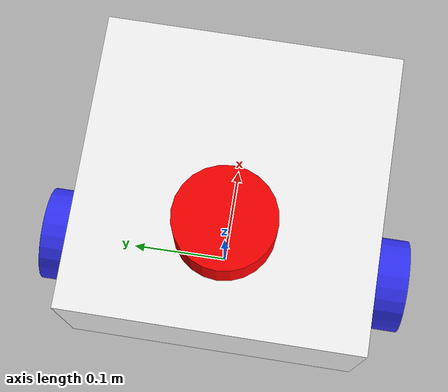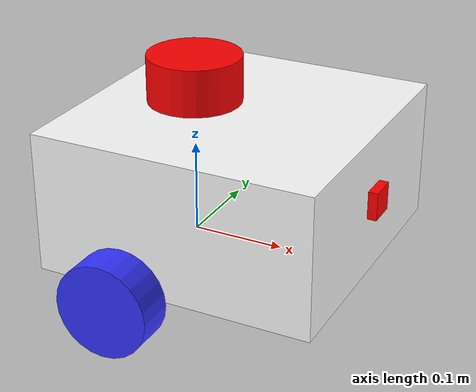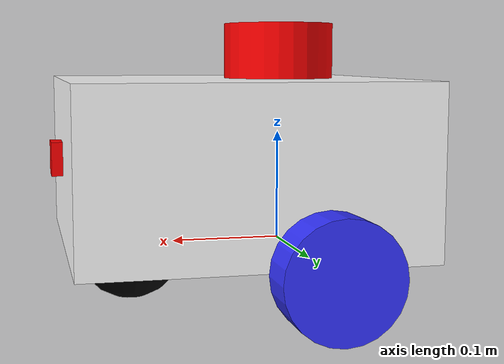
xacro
<?xml version="1.0"?>
<robot xmlns:xacro="http://www.ros.org/wiki/xacro"  name="robot">

    <xacro:include filename="robot_core.xacro" />

    <!-- File for gazebo control -->
    <xacro:include filename="ros2_control.xacro" />
    <!-- File for lidar -->
    <xacro:include filename="lidar.xacro" />
    <!-- File for camera. Comment out if using depth camera. -->
    <!-- File for depth camera -->
    <xacro:include filename="depth_camera.xacro" />

</robot>

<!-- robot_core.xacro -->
<robot xmlns:xacro="http://www.ros.org/wiki/xacro" >

    <xacro:include filename="inertial_macros.xacro"/>

    <material name="white">
        <color rgba="1 1 1 1" />
    </material>

    <material name="orange">
        <color rgba="1 0.3 0.1 1"/>
    </material>

    <material name="blue">
        <color rgba="0.2 0.2 1 1"/>
    </material>

    <material name="black">
        <color rgba="0 0 0 1"/>
    </material>

    <material name="red">
        <color rgba="1 0 0 1"/>
    </material>

    <!-- BASE LINK -->

    <link name="base_link">

    </link>

    <!-- BASE FOOTPRINT LINK -->
    <joint name="base_footprint_joint" type="fixed">
        <parent link="base_link"/>
        <child link="base_footprint"/>
        <origin xyz="0 0 0" rpy="0 0 0"/>
    </joint>

    <link name="base_footprint"></link>

    <!-- CHASSIS LINK -->

    <joint name="chassis_joint" type="fixed">
        <parent link="base_link"/>
        <child link="chassis"/>
        <origin xyz="-0.1 0 0"/>
    </joint>

    <link name="chassis">
        <visual>
            <origin xyz="0.15 0 0.075"/>
            <geometry>
                <box size="0.3 0.3 0.15"/>
            </geometry>
            <material name="white"/>
        </visual>
        <collision>
            <origin xyz="0.15 0 0.075"/>
            <geometry>
                <box size="0.3 0.3 0.15"/>
            </geometry>
        </collision>
        <xacro:inertial_box mass="0.5" x="0.3" y="0.3" z="0.15">
            <origin xyz="0.15 0 0.075" rpy="0 0 0"/>
        </xacro:inertial_box>
    </link>

    <gazebo reference="chassis">
        <material>Gazebo/White</material>
    </gazebo>

    <!-- LEFT WHEEL LINK -->

    <joint name="left_wheel_joint" type="continuous">
        <parent link="base_link"/>
        <child link="left_wheel"/>
        <origin xyz="0 0.175 0" rpy="-${pi/2} 0 0" />
        <axis xyz="0 0 1"/>
    </joint>

    <link name="left_wheel">
        <visual>
            <geometry>
                <cylinder radius="0.05" length="0.04"/>
            </geometry>
            <material name="blue"/>
        </visual>
        <collision>
            <geometry>
                <cylinder radius="0.05" length="0.04"/>
            </geometry>
        </collision>
        <xacro:inertial_cylinder mass="0.1" length="0.04" radius="0.05">
            <origin xyz="0 0 0" rpy="0 0 0"/>
        </xacro:inertial_cylinder>
    </link>

    <gazebo reference="left_wheel">
        <material>Gazebo/Blue</material>
    </gazebo>

    <!-- RIGHT WHEEL LINK -->

    <joint name="right_wheel_joint" type="continuous">
        <parent link="base_link"/>
        <child link="right_wheel"/>
        <origin xyz="0 -0.175 0" rpy="${pi/2} 0 0" />
        <axis xyz="0 0 -1"/>
    </joint>

    <link name="right_wheel">
        <visual>
            <geometry>
                <cylinder radius="0.05" length="0.04"/>
            </geometry>
            <material name="blue"/>
        </visual>
        <collision>
            <geometry>
                <cylinder radius="0.05" length="0.04"/>
            </geometry>
        </collision>
        <xacro:inertial_cylinder mass="0.1" length="0.04" radius="0.05">
            <origin xyz="0 0 0" rpy="0 0 0"/>
        </xacro:inertial_cylinder>
    </link>

    <gazebo reference="right_wheel">
        <material>Gazebo/Blue</material>
    </gazebo>

    <!-- CASTER WHEEL LINK -->

    <joint name="caster_wheel_joint" type="fixed">
        <parent link="chassis"/>
        <child link="caster_wheel"/>
        <origin xyz="0.24 0 0"/>
    </joint>

    <link name="caster_wheel">
        <visual>
            <geometry>
                <sphere radius="0.05"/>
            </geometry>
            <material name="black"/>
        </visual>
        <collision>
            <geometry>
                <sphere radius="0.05"/>
            </geometry>
        </collision>
        <xacro:inertial_sphere mass="0.1" radius="0.05">
            <origin xyz="0 0 0" rpy="0 0 0"/>
        </xacro:inertial_sphere>
    </link>

    <!-- Set friction coefficient to basically 0 (not 0 incase there is a divide by 0) -->
    <gazebo reference="caster_wheel">
        <material>Gazebo/Black</material>
        <mu1 value="0.001"/>
        <mu2 value="0.001"/>
    </gazebo>

</robot>

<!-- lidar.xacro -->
<robot xmlns:xacro="http://www.ros.org/wiki/xacro"  name="robot">

    <!-- Add a joint and link to locate LiDar within our robot -->
    <joint name="laser_joint" type="fixed">
        <parent link="chassis"/>
        <child link="laser_frame"/>
        <!-- Place origin of laser link at the top of the robot -->
        <origin xyz="0.1 0 0.175" rpy="0 0 0"/>
    </joint>

    <link name="laser_frame">
        <visual>
            <geometry>
                <cylinder radius="0.05" length="0.05"/>
            </geometry>
            <material name="red"/>
        </visual>
        <collision>
            <geometry>
                <cylinder radius="0.05" length="0.05"/>
            </geometry>
        </collision>
        <xacro:inertial_cylinder mass="0.1" length="0.4" radius="0.05">
            <origin xyz="0 0 0" rpy="0 0 0"/>
        </xacro:inertial_cylinder>
    </link>

    <!-- Add a gazebo tag to simulate the LiDar -->
    <gazebo reference="laser_frame">
        <!-- Set the color of the LiDar. The color for the link sets color in rviz, not Gazebo -->
        <material>Gazebo/Red</material>

        <!-- Ray sensor is a scanning LiDar -->
        <sensor name="laser" type="ray">
            <!-- Origin of the sensor is at the center of the link -->
            <pose> 0 0 0 0 0 0 </pose>
            <visualize>true</visualize>
            <!-- Update 10 times / second -->
            <update_rate>10</update_rate>
            <!-- Specify paramters for the virtual sensor -->
            <ray>
                <scan>
                    <horizontal>
                        <samples>360</samples>
                        <min_angle>-3.14</min_angle>
                        <max_angle>3.14</max_angle>
                    </horizontal>
                </scan>
                <range>
                    <min>0.3</min>
                    <max>12</max>
                </range>
            </ray>
            <!-- Plug in to publish the gazebo ray sensor to ROS topics -->
            <plugin name="laser_controller" filename="libgazebo_ros_ray_sensor.so">
                <!-- What topic to publish onto (publish to scan) -->
                <ros>
                    <argument>~/out:=scan</argument>
                </ros>
                <output_type>sensor_msgs/LaserScan</output_type>
                <!-- What frame ID to put in the laser scan message -->
                <frame_name>laser_frame</frame_name>
            </plugin>
        </sensor>
    </gazebo>

</robot>

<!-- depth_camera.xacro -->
<robot xmlns:xacro="http://www.ros.org/wiki/xacro"  name="robot">

    <!-- Add a joint and link to locate LiDar within our robot -->
    <joint name="camera_joint" type="fixed">
        <parent link="chassis"/>
        <child link="camera_link"/>
        <!-- Place origin of camera link at the front center. This uses ROS transform -->
        <origin xyz="0.305 0 0.08" rpy="0 0 0"/>
    </joint>

    <link name="camera_link">
        <visual>
            <geometry>
                <box size="0.010 0.03 0.03"/>
            </geometry>
            <material name="red"/>
        </visual>
    </link>

    <!-- Optical joint for optical transform system -->
    <joint name="camera_optical_joint" type="fixed">
        <parent link="camera_link"/>
        <child link="camera_link_optical"/>
        <origin xyz="0 0 0" rpy="${-pi/2} 0 ${-pi/2}"/>
    </joint>

    <!-- Optical link for optical transform system -->
    <link name="camera_link_optical"></link>

    <!-- Add a gazebo tag to simulate the camera -->
    <gazebo reference="camera_link">
        <material>Gazebo/Red</material>

        <sensor name="camera" type="depth">
            <pose> 0 0 0 0 0 0 </pose>
            <visualize>true</visualize>
            <update_rate>10</update_rate>
            <camera>
                <horizontal_fov>1.089</horizontal_fov>
                <!-- Set image properties -->
                <image>
                    <!-- Change this from camera for endianess -->
                    <format>B8G8R8</format>
                    <width>640</width>
                    <height>480</height>
                </image>
                <!-- Set camera properties -->
                <clip>
                    <near>0.05</near>
                    <far>8.0</far>
                </clip>
            </camera>
            <plugin name="camera_controller" filename="libgazebo_ros_camera.so">
                <!-- Published data is associated with camera_link_optical. Gazebo uses camera_link -->
                <frame_name>camera_link_optical</frame_name>
                <!-- Not sure what these do, but they are required -->
                <min_depth>0.1</min_depth>
                <max_depth>100</max_depth>
            </plugin>
        </sensor>
    </gazebo>

</robot>
